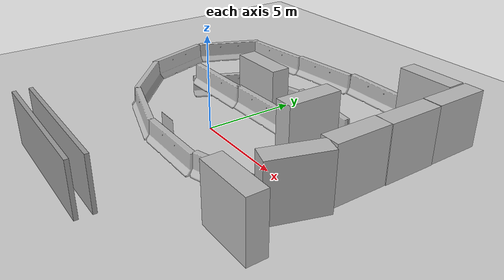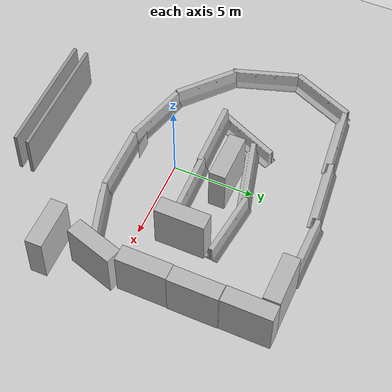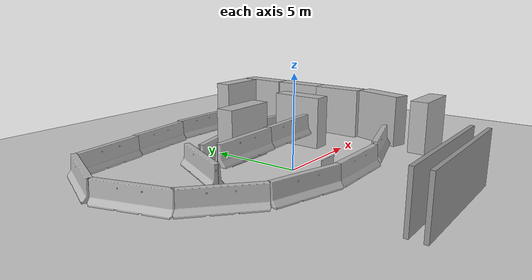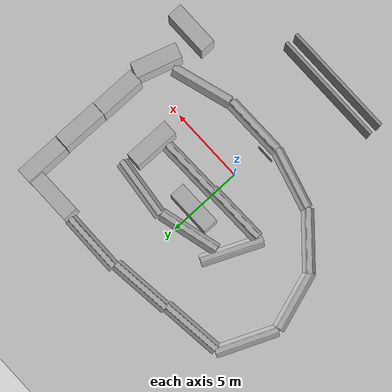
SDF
<sdf version="1.7">
 <world name="default">
  <model name="ground_plane">
   <static>1</static>
   <link name="link">
    <collision name="collision">
     <geometry><plane><normal>0 0 1</normal><size>100 100</size></plane></geometry>
     <surface>
      <contact><collide_bitmask>65535</collide_bitmask></contact>
      <friction><ode><mu>100</mu><mu2>50</mu2></ode></friction>
     </surface>
    </collision>
    <visual name="visual">
     <cast_shadows>0</cast_shadows>
     <geometry><plane><normal>0 0 1</normal><size>100 100</size></plane></geometry>
     <material>
      <script><uri>file://media/materials/scripts/gazebo.material</uri><name>Gazebo/Grey</name></script>
     </material>
    </visual>
   </link>
  </model>
  <model name="grey_wall">
   <static>1</static>
   <link name="link">
    <pose>0 0 1.4 0 -0 0</pose>
    <collision name="collision"><geometry><box><size>7.5 0.2 2.8</size></box></geometry></collision>
    <visual name="visual">
     <cast_shadows>0</cast_shadows>
     <geometry><box><size>7.5 0.2 2.8</size></box></geometry>
     <material>
      <script>
       <uri>model://grey_wall/materials/scripts</uri>
       <uri>model://grey_wall/materials/textures</uri>
       <name>vrc/grey_wall</name>
      </script>
     </material>
    </visual>
   </link>
   <pose>-0.137893 -8.35678 0 0 -0 0</pose>
  </model>
  <model name="nist_maze_wall_120">
   <static>1</static>
   <link name="nist_maze_wall_120_link">
    <collision name="collision">
     <geometry>
      <mesh><uri>model://nist_maze_wall_120/meshes/nist_maze_wall_120.dae</uri><scale>1 1 1</scale></mesh>
     </geometry>
    </collision>
    <visual name="visual">
     <geometry>
      <mesh><uri>model://nist_maze_wall_120/meshes/nist_maze_wall_120.dae</uri><scale>1 1 1</scale></mesh>
     </geometry>
    </visual>
   </link>
   <pose>-0.370379 -2.82162 0 0 -0 0</pose>
  </model>
  <model name="brick_box_3x1x3">
   <static>1</static>
   <link name="chassis">
    <pose>0 0 1.5 0 -0 0</pose>
    <collision name="collision"><geometry><box><size>3 1 3</size></box></geometry></collision>
    <visual name="visual">
     <geometry><mesh><uri>model://brick_box_3x1x3/meshes/simple_box.dae</uri><scale>3 1 3</scale></mesh></geometry>
     <material>
      <script>
       <uri>model://brick_box_3x1x3/materials/scripts</uri>
       <uri>model://brick_box_3x1x3/materials/textures</uri>
       <name>BrickBox/Diffuse</name>
      </script>
     </material>
    </visual>
   </link>
   <pose>8.1491 -3.89878 0 0 -0 0</pose>
  </model>
  <model name="jersey_barrier">
   <static>1</static>
   <link name="link">
    <visual name="visual">
     <geometry><mesh><uri>model://jersey_barrier/meshes/jersey_barrier.dae</uri></mesh></geometry>
    </visual>
    <collision name="upright">
     <pose>0 0 0.5715 0 -0 0</pose>
     <geometry><box><size>4.06542 0.3063 1.143</size></box></geometry>
    </collision>
    <collision name="base">
     <pose>0 0 0.032258 0 -0 0</pose>
     <geometry><box><size>4.06542 0.8107 0.064516</size></box></geometry>
    </collision>
    <collision name="base2">
     <pose>0 0 0.1 0 -0 0</pose>
     <geometry><box><size>4.06542 0.65 0.1</size></box></geometry>
    </collision>
    <collision name="base3">
     <pose>0 0 0.2 0 -0 0</pose>
     <geometry><box><size>4.06542 0.5 0.1</size></box></geometry>
    </collision>
    <collision name="left-angle">
     <pose>0 -0.224 0.2401 0.9 -0 0</pose>
     <geometry><box><size>4.06542 0.5 0.064516</size></box></geometry>
    </collision>
    <collision name="right-angle">
     <pose>0 0.224 0.2401 -0.9 0 0</pose>
     <geometry><box><size>4.06542 0.5 0.064516</size></box></geometry>
    </collision>
   </link>
   <pose>-3.31471 3.27473 0 0 0 -1.99478</pose>
  </model>
  <model name="grey_wall_clone">
   <static>1</static>
   <link name="link">
    <pose>0 0 1.4 0 -0 0</pose>
    <collision name="collision"><geometry><box><size>7.5 0.2 2.8</size></box></geometry></collision>
    <visual name="visual">
     <cast_shadows>0</cast_shadows>
     <geometry><box><size>7.5 0.2 2.8</size></box></geometry>
     <material>
      <script>
       <uri>model://grey_wall/materials/scripts</uri>
       <uri>model://grey_wall/materials/textures</uri>
       <name>vrc/grey_wall</name>
      </script>
     </material>
    </visual>
   </link>
   <pose>-0.108574 -7.58211 0 0 -0 0</pose>
  </model>
  <model name="jersey_barrier_clone">
   <static>1</static>
   <link name="link">
    <visual name="visual">
     <geometry><mesh><uri>model://jersey_barrier/meshes/jersey_barrier.dae</uri></mesh></geometry>
    </visual>
    <collision name="upright">
     <pose>0 0 0.5715 0 -0 0</pose>
     <geometry><box><size>4.06542 0.3063 1.143</size></box></geometry>
    </collision>
    <collision name="base">
     <pose>0 0 0.032258 0 -0 0</pose>
     <geometry><box><size>4.06542 0.8107 0.064516</size></box></geometry>
    </collision>
    <collision name="base2">
     <pose>0 0 0.1 0 -0 0</pose>
     <geometry><box><size>4.06542 0.65 0.1</size></box></geometry>
    </collision>
    <collision name="base3">
     <pose>0 0 0.2 0 -0 0</pose>
     <geometry><box><size>4.06542 0.5 0.1</size></box></geometry>
    </collision>
    <collision name="left-angle">
     <pose>0 -0.224 0.2401 0.9 -0 0</pose>
     <geometry><box><size>4.06542 0.5 0.064516</size></box></geometry>
    </collision>
    <collision name="right-angle">
     <pose>0 0.224 0.2401 -0.9 0 0</pose>
     <geometry><box><size>4.06542 0.5 0.064516</size></box></geometry>
    </collision>
   </link>
   <pose>-6.07933 -0.567885 0 0 0 -0.723427</pose>
  </model>
  <model name="jersey_barrier_clone_clone">
   <static>1</static>
   <link name="link">
    <visual name="visual">
     <geometry><mesh><uri>model://jersey_barrier/meshes/jersey_barrier.dae</uri></mesh></geometry>
    </visual>
    <collision name="upright">
     <pose>0 0 0.5715 0 -0 0</pose>
     <geometry><box><size>4.06542 0.3063 1.143</size></box></geometry>
    </collision>
    <collision name="base">
     <pose>0 0 0.032258 0 -0 0</pose>
     <geometry><box><size>4.06542 0.8107 0.064516</size></box></geometry>
    </collision>
    <collision name="base2">
     <pose>0 0 0.1 0 -0 0</pose>
     <geometry><box><size>4.06542 0.65 0.1</size></box></geometry>
    </collision>
    <collision name="base3">
     <pose>0 0 0.2 0 -0 0</pose>
     <geometry><box><size>4.06542 0.5 0.1</size></box></geometry>
    </collision>
    <collision name="left-angle">
     <pose>0 -0.224 0.2401 0.9 -0 0</pose>
     <geometry><box><size>4.06542 0.5 0.064516</size></box></geometry>
    </collision>
    <collision name="right-angle">
     <pose>0 0.224 0.2401 -0.9 0 0</pose>
     <geometry><box><size>4.06542 0.5 0.064516</size></box></geometry>
    </collision>
   </link>
   <pose>1.37527 -2.90407 0 0 -0 0.007967</pose>
  </model>
  <model name="jersey_barrier_clone_clone_0">
   <static>1</static>
   <link name="link">
    <visual name="visual">
     <geometry><mesh><uri>model://jersey_barrier/meshes/jersey_barrier.dae</uri></mesh></geometry>
    </visual>
    <collision name="upright">
     <pose>0 0 0.5715 0 -0 0</pose>
     <geometry><box><size>4.06542 0.3063 1.143</size></box></geometry>
    </collision>
    <collision name="base">
     <pose>0 0 0.032258 0 -0 0</pose>
     <geometry><box><size>4.06542 0.8107 0.064516</size></box></geometry>
    </collision>
    <collision name="base2">
     <pose>0 0 0.1 0 -0 0</pose>
     <geometry><box><size>4.06542 0.65 0.1</size></box></geometry>
    </collision>
    <collision name="base3">
     <pose>0 0 0.2 0 -0 0</pose>
     <geometry><box><size>4.06542 0.5 0.1</size></box></geometry>
    </collision>
    <collision name="left-angle">
     <pose>0 -0.224 0.2401 0.9 -0 0</pose>
     <geometry><box><size>4.06542 0.5 0.064516</size></box></geometry>
    </collision>
    <collision name="right-angle">
     <pose>0 0.224 0.2401 -0.9 0 0</pose>
     <geometry><box><size>4.06542 0.5 0.064516</size></box></geometry>
    </collision>
   </link>
   <pose>-2.57025 -2.4226 0 0 0 -0.273786</pose>
  </model>
  <model name="jersey_barrier_clone_clone_1">
   <static>1</static>
   <link name="link">
    <visual name="visual">
     <geometry><mesh><uri>model://jersey_barrier/meshes/jersey_barrier.dae</uri></mesh></geometry>
    </visual>
    <collision name="upright">
     <pose>0 0 0.5715 0 -0 0</pose>
     <geometry><box><size>4.06542 0.3063 1.143</size></box></geometry>
    </collision>
    <collision name="base">
     <pose>0 0 0.032258 0 -0 0</pose>
     <geometry><box><size>4.06542 0.8107 0.064516</size></box></geometry>
    </collision>
    <collision name="base2">
     <pose>0 0 0.1 0 -0 0</pose>
     <geometry><box><size>4.06542 0.65 0.1</size></box></geometry>
    </collision>
    <collision name="base3">
     <pose>0 0 0.2 0 -0 0</pose>
     <geometry><box><size>4.06542 0.5 0.1</size></box></geometry>
    </collision>
    <collision name="left-angle">
     <pose>0 -0.224 0.2401 0.9 -0 0</pose>
     <geometry><box><size>4.06542 0.5 0.064516</size></box></geometry>
    </collision>
    <collision name="right-angle">
     <pose>0 0.224 0.2401 -0.9 0 0</pose>
     <geometry><box><size>4.06542 0.5 0.064516</size></box></geometry>
    </collision>
   </link>
   <pose>-8.14353 2.50723 0 0 0 -1.25735</pose>
  </model>
  <model name="jersey_barrier_clone_clone_1_clone">
   <static>1</static>
   <link name="link">
    <visual name="visual">
     <geometry><mesh><uri>model://jersey_barrier/meshes/jersey_barrier.dae</uri></mesh></geometry>
    </visual>
    <collision name="upright">
     <pose>0 0 0.5715 0 -0 0</pose>
     <geometry><box><size>4.06542 0.3063 1.143</size></box></geometry>
    </collision>
    <collision name="base">
     <pose>0 0 0.032258 0 -0 0</pose>
     <geometry><box><size>4.06542 0.8107 0.064516</size></box></geometry>
    </collision>
    <collision name="base2">
     <pose>0 0 0.1 0 -0 0</pose>
     <geometry><box><size>4.06542 0.65 0.1</size></box></geometry>
    </collision>
    <collision name="base3">
     <pose>0 0 0.2 0 -0 0</pose>
     <geometry><box><size>4.06542 0.5 0.1</size></box></geometry>
    </collision>
    <collision name="left-angle">
     <pose>0 -0.224 0.2401 0.9 -0 0</pose>
     <geometry><box><size>4.06542 0.5 0.064516</size></box></geometry>
    </collision>
    <collision name="right-angle">
     <pose>0 0.224 0.2401 -0.9 0 0</pose>
     <geometry><box><size>4.06542 0.5 0.064516</size></box></geometry>
    </collision>
   </link>
   <pose>-7.98798 6.33797 0 0 0 -1.98155</pose>
  </model>
  <model name="jersey_barrier_clone_clone_1_clone_clone">
   <static>1</static>
   <link name="link">
    <visual name="visual">
     <geometry><mesh><uri>model://jersey_barrier/meshes/jersey_barrier.dae</uri></mesh></geometry>
    </visual>
    <collision name="upright">
     <pose>0 0 0.5715 0 -0 0</pose>
     <geometry><box><size>4.06542 0.3063 1.143</size></box></geometry>
    </collision>
    <collision name="base">
     <pose>0 0 0.032258 0 -0 0</pose>
     <geometry><box><size>4.06542 0.8107 0.064516</size></box></geometry>
    </collision>
    <collision name="base2">
     <pose>0 0 0.1 0 -0 0</pose>
     <geometry><box><size>4.06542 0.65 0.1</size></box></geometry>
    </collision>
    <collision name="base3">
     <pose>0 0 0.2 0 -0 0</pose>
     <geometry><box><size>4.06542 0.5 0.1</size></box></geometry>
    </collision>
    <collision name="left-angle">
     <pose>0 -0.224 0.2401 0.9 -0 0</pose>
     <geometry><box><size>4.06542 0.5 0.064516</size></box></geometry>
    </collision>
    <collision name="right-angle">
     <pose>0 0.224 0.2401 -0.9 0 0</pose>
     <geometry><box><size>4.06542 0.5 0.064516</size></box></geometry>
    </collision>
   </link>
   <pose>-5.11097 8.25684 0 0 0 -3.03069</pose>
  </model>
  <model name="jersey_barrier_clone_0_clone_clone">
   <static>1</static>
   <link name="link">
    <visual name="visual">
     <geometry><mesh><uri>model://jersey_barrier/meshes/jersey_barrier.dae</uri></mesh></geometry>
    </visual>
    <collision name="upright">
     <pose>0 0 0.5715 0 -0 0</pose>
     <geometry><box><size>4.06542 0.3063 1.143</size></box></geometry>
    </collision>
    <collision name="base">
     <pose>0 0 0.032258 0 -0 0</pose>
     <geometry><box><size>4.06542 0.8107 0.064516</size></box></geometry>
    </collision>
    <collision name="base2">
     <pose>0 0 0.1 0 -0 0</pose>
     <geometry><box><size>4.06542 0.65 0.1</size></box></geometry>
    </collision>
    <collision name="base3">
     <pose>0 0 0.2 0 -0 0</pose>
     <geometry><box><size>4.06542 0.5 0.1</size></box></geometry>
    </collision>
    <collision name="left-angle">
     <pose>0 -0.224 0.2401 0.9 -0 0</pose>
     <geometry><box><size>4.06542 0.5 0.064516</size></box></geometry>
    </collision>
    <collision name="right-angle">
     <pose>0 0.224 0.2401 -0.9 0 0</pose>
     <geometry><box><size>4.06542 0.5 0.064516</size></box></geometry>
    </collision>
   </link>
   <pose>-0.714811 4.40967 0.155446 0 -0 0.251883</pose>
  </model>
  <model name="jersey_barrier_clone_clone_1_clone_clone_clone">
   <static>1</static>
   <link name="link">
    <visual name="visual">
     <geometry><mesh><uri>model://jersey_barrier/meshes/jersey_barrier.dae</uri></mesh></geometry>
    </visual>
    <collision name="upright">
     <pose>0 0 0.5715 0 -0 0</pose>
     <geometry><box><size>4.06542 0.3063 1.143</size></box></geometry>
    </collision>
    <collision name="base">
     <pose>0 0 0.032258 0 -0 0</pose>
     <geometry><box><size>4.06542 0.8107 0.064516</size></box></geometry>
    </collision>
    <collision name="base2">
     <pose>0 0 0.1 0 -0 0</pose>
     <geometry><box><size>4.06542 0.65 0.1</size></box></geometry>
    </collision>
    <collision name="base3">
     <pose>0 0 0.2 0 -0 0</pose>
     <geometry><box><size>4.06542 0.5 0.1</size></box></geometry>
    </collision>
    <collision name="left-angle">
     <pose>0 -0.224 0.2401 0.9 -0 0</pose>
     <geometry><box><size>4.06542 0.5 0.064516</size></box></geometry>
    </collision>
    <collision name="right-angle">
     <pose>0 0.224 0.2401 -0.9 0 0</pose>
     <geometry><box><size>4.06542 0.5 0.064516</size></box></geometry>
    </collision>
   </link>
   <pose>-1.19028 8.81556 0 0 0 -3.03069</pose>
  </model>
  <model name="jersey_barrier_clone_clone_1_clone_clone_clone_0">
   <static>1</static>
   <link name="link">
    <visual name="visual">
     <geometry><mesh><uri>model://jersey_barrier/meshes/jersey_barrier.dae</uri></mesh></geometry>
    </visual>
    <collision name="upright">
     <pose>0 0 0.5715 0 -0 0</pose>
     <geometry><box><size>4.06542 0.3063 1.143</size></box></geometry>
    </collision>
    <collision name="base">
     <pose>0 0 0.032258 0 -0 0</pose>
     <geometry><box><size>4.06542 0.8107 0.064516</size></box></geometry>
    </collision>
    <collision name="base2">
     <pose>0 0 0.1 0 -0 0</pose>
     <geometry><box><size>4.06542 0.65 0.1</size></box></geometry>
    </collision>
    <collision name="base3">
     <pose>0 0 0.2 0 -0 0</pose>
     <geometry><box><size>4.06542 0.5 0.1</size></box></geometry>
    </collision>
    <collision name="left-angle">
     <pose>0 -0.224 0.2401 0.9 -0 0</pose>
     <geometry><box><size>4.06542 0.5 0.064516</size></box></geometry>
    </collision>
    <collision name="right-angle">
     <pose>0 0.224 0.2401 -0.9 0 0</pose>
     <geometry><box><size>4.06542 0.5 0.064516</size></box></geometry>
    </collision>
   </link>
   <pose>2.81754 9.23343 0 0 -0 3.13266</pose>
  </model>
  <model name="jersey_barrier_clone_0_clone_clone_clone">
   <static>1</static>
   <link name="link">
    <visual name="visual">
     <geometry><mesh><uri>model://jersey_barrier/meshes/jersey_barrier.dae</uri></mesh></geometry>
    </visual>
    <collision name="upright">
     <pose>0 0 0.5715 0 -0 0</pose>
     <geometry><box><size>4.06542 0.3063 1.143</size></box></geometry>
    </collision>
    <collision name="base">
     <pose>0 0 0.032258 0 -0 0</pose>
     <geometry><box><size>4.06542 0.8107 0.064516</size></box></geometry>
    </collision>
    <collision name="base2">
     <pose>0 0 0.1 0 -0 0</pose>
     <geometry><box><size>4.06542 0.65 0.1</size></box></geometry>
    </collision>
    <collision name="base3">
     <pose>0 0 0.2 0 -0 0</pose>
     <geometry><box><size>4.06542 0.5 0.1</size></box></geometry>
    </collision>
    <collision name="left-angle">
     <pose>0 -0.224 0.2401 0.9 -0 0</pose>
     <geometry><box><size>4.06542 0.5 0.064516</size></box></geometry>
    </collision>
    <collision name="right-angle">
     <pose>0 0.224 0.2401 -0.9 0 0</pose>
     <geometry><box><size>4.06542 0.5 0.064516</size></box></geometry>
    </collision>
   </link>
   <pose>3.21051 4.78189 0.262888 0 0 -0.114507</pose>
  </model>
  <model name="brick_box_3x1x3_clone">
   <static>1</static>
   <link name="chassis">
    <pose>0 0 1.5 0 -0 0</pose>
    <collision name="collision"><geometry><box><size>3 1 3</size></box></geometry></collision>
    <visual name="visual">
     <geometry><mesh><uri>model://brick_box_3x1x3/meshes/simple_box.dae</uri><scale>3 1 3</scale></mesh></geometry>
     <material>
      <script>
       <uri>model://brick_box_3x1x3/materials/scripts</uri>
       <uri>model://brick_box_3x1x3/materials/textures</uri>
       <name>BrickBox/Diffuse</name>
      </script>
     </material>
    </visual>
   </link>
   <pose>6.25051 9.03188 0 0 -0 0</pose>
  </model>
  <model name="brick_box_3x1x3_clone_0">
   <static>1</static>
   <link name="chassis">
    <pose>0 0 1.5 0 -0 0</pose>
    <collision name="collision"><geometry><box><size>3 1 3</size></box></geometry></collision>
    <visual name="visual">
     <geometry><mesh><uri>model://brick_box_3x1x3/meshes/simple_box.dae</uri><scale>3 1 3</scale></mesh></geometry>
     <material>
      <script>
       <uri>model://brick_box_3x1x3/materials/scripts</uri>
       <uri>model://brick_box_3x1x3/materials/textures</uri>
       <name>BrickBox/Diffuse</name>
      </script>
     </material>
    </visual>
   </link>
   <pose>8.32767 8.05812 0 0 0 -1.57877</pose>
  </model>
  <model name="brick_box_3x1x3_clone_0_clone">
   <static>1</static>
   <link name="chassis">
    <pose>0 0 1.5 0 -0 0</pose>
    <collision name="collision"><geometry><box><size>3 1 3</size></box></geometry></collision>
    <visual name="visual">
     <geometry><mesh><uri>model://brick_box_3x1x3/meshes/simple_box.dae</uri><scale>3 1 3</scale></mesh></geometry>
     <material>
      <script>
       <uri>model://brick_box_3x1x3/materials/scripts</uri>
       <uri>model://brick_box_3x1x3/materials/textures</uri>
       <name>BrickBox/Diffuse</name>
      </script>
     </material>
    </visual>
   </link>
   <pose>8.33295 5.01816 0 0 0 -1.57877</pose>
  </model>
  <model name="brick_box_3x1x3_clone_0_clone_0">
   <static>1</static>
   <link name="chassis">
    <pose>0 0 1.5 0 -0 0</pose>
    <collision name="collision"><geometry><box><size>3 1 3</size></box></geometry></collision>
    <visual name="visual">
     <geometry><mesh><uri>model://brick_box_3x1x3/meshes/simple_box.dae</uri><scale>3 1 3</scale></mesh></geometry>
     <material>
      <script>
       <uri>model://brick_box_3x1x3/materials/scripts</uri>
       <uri>model://brick_box_3x1x3/materials/textures</uri>
       <name>BrickBox/Diffuse</name>
      </script>
     </material>
    </visual>
   </link>
   <pose>8.27867 2.00615 0 0 0 -1.57877</pose>
  </model>
  <model name="brick_box_3x1x3_clone_0_clone_1">
   <static>1</static>
   <link name="chassis">
    <pose>0 0 1.5 0 -0 0</pose>
    <collision name="collision"><geometry><box><size>3 1 3</size></box></geometry></collision>
    <visual name="visual">
     <geometry><mesh><uri>model://brick_box_3x1x3/meshes/simple_box.dae</uri><scale>3 1 3</scale></mesh></geometry>
     <material>
      <script>
       <uri>model://brick_box_3x1x3/materials/scripts</uri>
       <uri>model://brick_box_3x1x3/materials/textures</uri>
       <name>BrickBox/Diffuse</name>
      </script>
     </material>
    </visual>
   </link>
   <pose>4.60276 2.58858 0 0 0 -1.57877</pose>
  </model>
  <model name="jersey_barrier_clone_0_clone_0">
   <static>1</static>
   <link name="link">
    <visual name="visual">
     <geometry><mesh><uri>model://jersey_barrier/meshes/jersey_barrier.dae</uri></mesh></geometry>
    </visual>
    <collision name="upright">
     <pose>0 0 0.5715 0 -0 0</pose>
     <geometry><box><size>4.06542 0.3063 1.143</size></box></geometry>
    </collision>
    <collision name="base">
     <pose>0 0 0.032258 0 -0 0</pose>
     <geometry><box><size>4.06542 0.8107 0.064516</size></box></geometry>
    </collision>
    <collision name="base2">
     <pose>0 0 0.1 0 -0 0</pose>
     <geometry><box><size>4.06542 0.65 0.1</size></box></geometry>
    </collision>
    <collision name="base3">
     <pose>0 0 0.2 0 -0 0</pose>
     <geometry><box><size>4.06542 0.5 0.1</size></box></geometry>
    </collision>
    <collision name="left-angle">
     <pose>0 -0.224 0.2401 0.9 -0 0</pose>
     <geometry><box><size>4.06542 0.5 0.064516</size></box></geometry>
    </collision>
    <collision name="right-angle">
     <pose>0 0.224 0.2401 -0.9 0 0</pose>
     <geometry><box><size>4.06542 0.5 0.064516</size></box></geometry>
    </collision>
   </link>
   <pose>-1.81917 1.65471 0.852106 0 -0 0.018529</pose>
  </model>
  <model name="jersey_barrier_clone_0_clone_1">
   <static>1</static>
   <link name="link">
    <visual name="visual">
     <geometry><mesh><uri>model://jersey_barrier/meshes/jersey_barrier.dae</uri></mesh></geometry>
    </visual>
    <collision name="upright">
     <pose>0 0 0.5715 0 -0 0</pose>
     <geometry><box><size>4.06542 0.3063 1.143</size></box></geometry>
    </collision>
    <collision name="base">
     <pose>0 0 0.032258 0 -0 0</pose>
     <geometry><box><size>4.06542 0.8107 0.064516</size></box></geometry>
    </collision>
    <collision name="base2">
     <pose>0 0 0.1 0 -0 0</pose>
     <geometry><box><size>4.06542 0.65 0.1</size></box></geometry>
    </collision>
    <collision name="base3">
     <pose>0 0 0.2 0 -0 0</pose>
     <geometry><box><size>4.06542 0.5 0.1</size></box></geometry>
    </collision>
    <collision name="left-angle">
     <pose>0 -0.224 0.2401 0.9 -0 0</pose>
     <geometry><box><size>4.06542 0.5 0.064516</size></box></geometry>
    </collision>
    <collision name="right-angle">
     <pose>0 0.224 0.2401 -0.9 0 0</pose>
     <geometry><box><size>4.06542 0.5 0.064516</size></box></geometry>
    </collision>
   </link>
   <pose>5.37828 -2.24326 0.103739 0 -0 0.295021</pose>
  </model>
  <model name="brick_box_3x1x3_clone_0_clone_0_clone">
   <static>1</static>
   <link name="chassis">
    <pose>0 0 1.5 0 -0 0</pose>
    <collision name="collision"><geometry><box><size>3 1 3</size></box></geometry></collision>
    <visual name="visual">
     <geometry><mesh><uri>model://brick_box_3x1x3/meshes/simple_box.dae</uri><scale>3 1 3</scale></mesh></geometry>
     <material>
      <script>
       <uri>model://brick_box_3x1x3/materials/scripts</uri>
       <uri>model://brick_box_3x1x3/materials/textures</uri>
       <name>BrickBox/Diffuse</name>
      </script>
     </material>
    </visual>
   </link>
   <pose>8.13731 -1.0283 0 0 0 -1.87773</pose>
  </model>
  <model name="jersey_barrier_clone_0_clone_0_clone">
   <static>1</static>
   <link name="link">
    <visual name="visual">
     <geometry><mesh><uri>model://jersey_barrier/meshes/jersey_barrier.dae</uri></mesh></geometry>
    </visual>
    <collision name="upright">
     <pose>0 0 0.5715 0 -0 0</pose>
     <geometry><box><size>4.06542 0.3063 1.143</size></box></geometry>
    </collision>
    <collision name="base">
     <pose>0 0 0.032258 0 -0 0</pose>
     <geometry><box><size>4.06542 0.8107 0.064516</size></box></geometry>
    </collision>
    <collision name="base2">
     <pose>0 0 0.1 0 -0 0</pose>
     <geometry><box><size>4.06542 0.65 0.1</size></box></geometry>
    </collision>
    <collision name="base3">
     <pose>0 0 0.2 0 -0 0</pose>
     <geometry><box><size>4.06542 0.5 0.1</size></box></geometry>
    </collision>
    <collision name="left-angle">
     <pose>0 -0.224 0.2401 0.9 -0 0</pose>
     <geometry><box><size>4.06542 0.5 0.064516</size></box></geometry>
    </collision>
    <collision name="right-angle">
     <pose>0 0.224 0.2401 -0.9 0 0</pose>
     <geometry><box><size>4.06542 0.5 0.064516</size></box></geometry>
    </collision>
   </link>
   <pose>2.00784 1.81372 0.852106 0 -0 0.018529</pose>
  </model>
  <model name="brick_box_3x1x3_clone_1">
   <static>1</static>
   <link name="chassis">
    <pose>0 0 1.5 0 -0 0</pose>
    <collision name="collision"><geometry><box><size>3 1 3</size></box></geometry></collision>
    <visual name="visual">
     <geometry><mesh><uri>model://brick_box_3x1x3/meshes/simple_box.dae</uri><scale>3 1 3</scale></mesh></geometry>
     <material>
      <script>
       <uri>model://brick_box_3x1x3/materials/scripts</uri>
       <uri>model://brick_box_3x1x3/materials/textures</uri>
       <name>BrickBox/Diffuse</name>
      </script>
     </material>
    </visual>
   </link>
   <pose>0.040331 3.32516 0 0 -0 0</pose>
  </model>
 </world>
</sdf>
